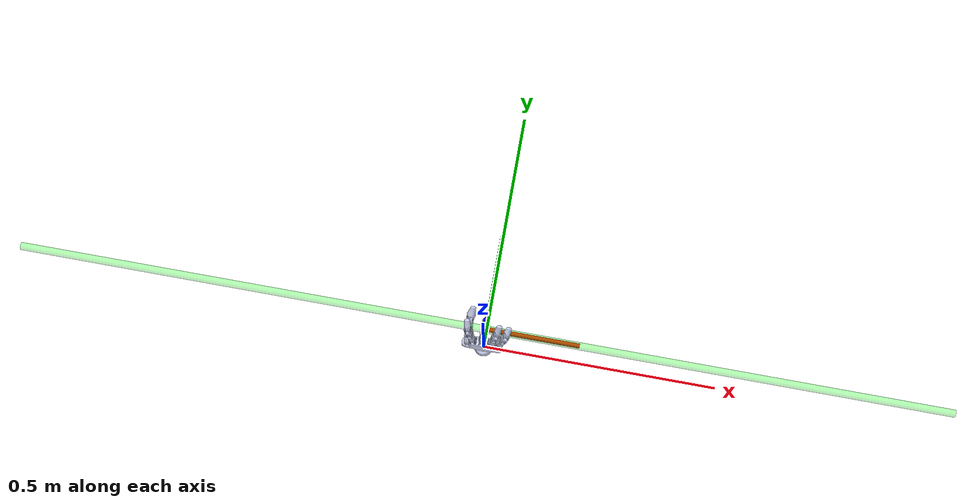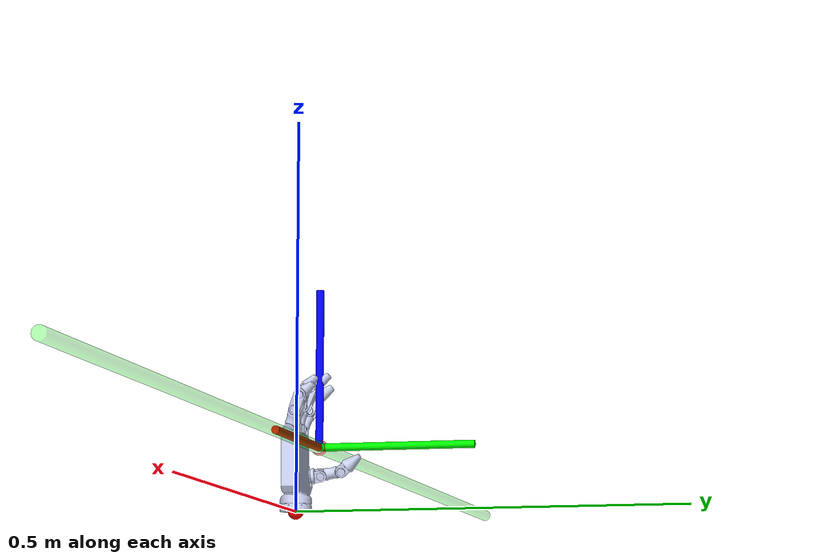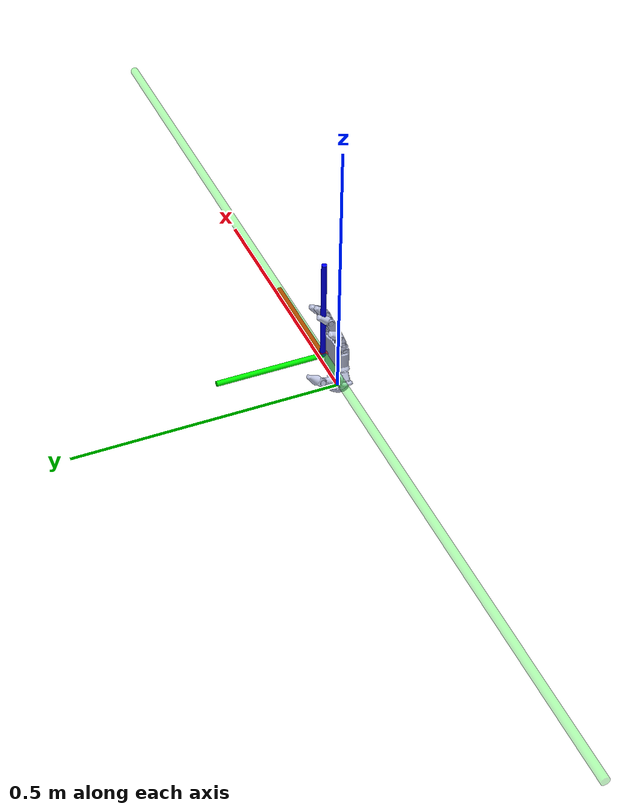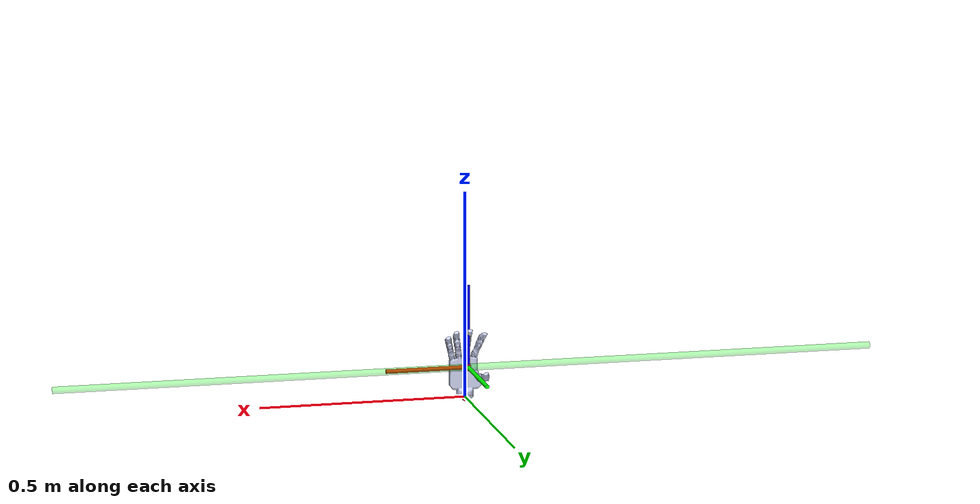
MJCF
<mujoco model="hand_right_sim">
    <compiler angle="radian" meshdir="/home/kavin/Documents/RosProjects/robot_ws/src/hand_right_sim/meshes/"/>

    <default>
        <geom density="5.0"/>
        <default class="joint">
            <joint axis="1 0 0" range="-3.14 3.14" limited="true" damping="0.8" armature="0.0002" frictionloss="0.01"/>
            <position kp="8" forcerange="-2 2" forcelimited="true"/>
        </default>
    </default>
    <size njmax="500" nconmax="100"/>
    <asset>
        <mesh name="palm_right" file="palm_right.STL"/>
        <mesh name="finger_11_right" file="finger_11_right.STL"/>
        <mesh name="finger_12_right" file="finger_12_right.STL"/>
        <mesh name="finger_13_right" file="finger_13_right.STL"/>
        <mesh name="finger_14_right" file="finger_14_right.STL"/>
        <mesh name="finger_21_right" file="finger_21_right.STL"/>
        <mesh name="finger_22_right" file="finger_22_right.STL"/>
        <mesh name="finger_23_right" file="finger_23_right.STL"/>
        <mesh name="finger_31_right" file="finger_31_right.STL"/>
        <mesh name="finger_32_right" file="finger_32_right.STL"/>
        <mesh name="finger_33_right" file="finger_33_right.STL"/>
        <mesh name="finger_41_right" file="finger_41_right.STL"/>
        <mesh name="finger_42_right" file="finger_42_right.STL"/>
        <mesh name="finger_43_right" file="finger_43_right.STL"/>
        <mesh name="finger_51_right" file="finger_51_right.STL"/>
        <mesh name="finger_52_right" file="finger_52_right.STL"/>
        <mesh name="finger_53_right" file="finger_53_right.STL"/>
    </asset>
    <worldbody>
        <body name="palm_right">
            <site name="ft_frame" pos="0 0 0" size="0.01 0.01 0.01" rgba="1 0 0 1" type="sphere" group="1"/>
            <body name="eef" pos="0 0.03 0.08">
                <site name="grip_site" pos="0 0 0" size="0.01 0.01 0.01" rgba="1 0 0 0.5" type="sphere" group="1"/>
                <site name="ee_x" pos="0.1 0 0" size="0.005 .1" quat="0.707105  0 0.707108 0 " rgba="1 0 0 1" type="cylinder" group="1"/>
                <site name="ee_y" pos="0 0.1 0" size="0.005 .1" quat="0.707105 0.707108 0 0" rgba="0 1 0 1" type="cylinder" group="1"/>
                <site name="ee_z" pos="0 0 0.1" size="0.005 .1" quat="1 0 0 0" rgba="0 0 1 1" type="cylinder" group="1"/>
                <site name="grip_site_cylinder" pos="0 0 0" size="0.008 1" quat="0.707105  0 0.707108 0 " rgba="0 1 0 0.3" type="cylinder" group="1"/>
            </body>

            <geom type="mesh" contype="0" conaffinity="0" group="1" rgba="0.792157 0.819608 0.933333 1" mesh="palm_right"/>
            <geom type="mesh" rgba="0.792157 0.819608 0.933333 1" mesh="palm_right"/>
            <body name="finger_11_right">
                <geom pos="-0.033156 0 0.046854" quat="-0.311001 0.357966 -0.577419 -0.664625" type="mesh" contype="0" conaffinity="0" group="1" rgba="0.792157 0.819608 0.933333 1"
                      mesh="finger_11_right"/>
                <geom pos="-0.033156 0 0.046854" quat="-0.311001 0.357966 -0.577419 -0.664625" type="mesh" rgba="0.792157 0.819608 0.933333 1" mesh="finger_11_right"/>
                <body name="finger_12_right">
                    <geom pos="-0.0337394 0.00495095 0.0472385" quat="0.164559 -0.0738354 -0.675353 -0.7151" type="mesh" contype="0" conaffinity="0" group="1" rgba="0.792157 0.819608 0.933333 1"
                          mesh="finger_12_right"/>
                    <geom pos="-0.0337394 0.00495095 0.0472385" quat="0.164559 -0.0738354 -0.675353 -0.7151" type="mesh" rgba="0.792157 0.819608 0.933333 1" mesh="finger_12_right"/>
                    <body name="finger_13_right" pos="-0.0357811 0.0222793 0.0485841" quat="0.160144 -0.0829774 -0.634047 -0.751966">
                        <inertial pos="2.80595e-08 -2.39117e-07 0.0134786" quat="0.70735 -4.57058e-06 4.56743e-06 0.706863" mass="0.00477507" diaginertia="5.13036e-07 5.06539e-07 1.11818e-07"/>
                        <joint class="joint" name="j_13_right" axis="-1 0 0"/>
                        <geom type="mesh" contype="0" conaffinity="0" group="1" rgba="0.792157 0.819608 0.933333 1" mesh="finger_13_right"/>
                        <geom type="mesh" rgba="0.792157 0.819608 0.933333 1" mesh="finger_13_right"/>
                        <body name="finger_14_right" pos="0 0 0.027" quat="0.967088 -0.254441 0 0">
                            <inertial pos="1.25791e-05 -0.000148504 0.0147394" quat="0.704713 0.00742825 -0.00610748 0.709427" mass="0.0045956" diaginertia="3.58607e-07 3.47268e-07 1.55217e-07"/>
                            <joint class="joint" name="j_14_right" axis="-1 0 0"/>
                            <geom type="mesh" contype="0" conaffinity="0" group="1" rgba="0.792157 0.819608 0.933333 1" mesh="finger_14_right"/>
                            <geom type="mesh" rgba="0.792157 0.819608 0.933333 1" mesh="finger_14_right"/>
                        </body>
                    </body>
                </body>
            </body>

            <body name="finger_21_right" pos="-0.023151 -0.00042188 0.10268" quat="0.0254432 -0.144315 0.171775 0.974176">
                <inertial pos="-3.24152e-08 -2.51581e-07 0.0147548" quat="0.706869 4.57535e-06 -4.57842e-06 0.707344" mass="0.00477507" diaginertia="5.13037e-07 5.06539e-07 1.11818e-07"/>
                <joint class="joint" name="j_21_right"/>
                <geom type="mesh" contype="0" conaffinity="0" group="1" rgba="0.792157 0.819608 0.933333 1" mesh="finger_21_right"/>
                <geom type="mesh" rgba="0.792157 0.819608 0.933333 1" mesh="finger_21_right"/>
                <body name="finger_22_right" pos="0 0 0.028233" quat="0.999917 0.0129201 0 0">
                    <inertial pos="1.0939e-05 -0.00275459 0.0214743" quat="0.989928 0.141348 -0.000490921 0.00794052" mass="0.00590807" diaginertia="9.20442e-07 9.07303e-07 1.87607e-07"/>
                    <joint class="joint" name="j_22_right"/>
                    <geom type="mesh" contype="0" conaffinity="0" group="1" rgba="0.792157 0.819608 0.933333 1" mesh="finger_22_right"/>
                    <geom type="mesh" rgba="0.792157 0.819608 0.933333 1" mesh="finger_22_right"/>
                    <body name="finger_23_right">
                        <geom pos="0 0 0.021" quat="0.965926 0.25882 0 0" type="mesh" contype="0" conaffinity="0" group="1" rgba="0.792157 0.819608 0.933333 1" mesh="finger_23_right"/>
                        <geom pos="0 0 0.021" quat="0.965926 0.25882 0 0" type="mesh" rgba="0.792157 0.819608 0.933333 1" mesh="finger_23_right"/>
                    </body>
                </body>
            </body>
            <body name="finger_31_right" pos="-0.003285 -0.00042188 0.10558" quat="-3.6174e-06 -6.37853e-07 -0.17365 -0.984807">
                <inertial pos="-3.25832e-08 -2.51593e-07 0.0147548" quat="0.70687 4.57531e-06 -4.57838e-06 0.707344" mass="0.00477507" diaginertia="5.13037e-07 5.06539e-07 1.11818e-07"/>
                <joint class="joint" name="j_31_right"/>
                <geom type="mesh" contype="0" conaffinity="0" group="1" rgba="0.792157 0.819608 0.933333 1" mesh="finger_31_right"/>
                <geom type="mesh" rgba="0.792157 0.819608 0.933333 1" mesh="finger_31_right"/>
                <body name="finger_32_right" pos="0 0 0.028233" quat="0.999592 0.0285586 0 0">
                    <inertial pos="1.10424e-05 -0.00310821 0.0248837" quat="0.99031 0.138776 -0.000191063 0.00526613" mass="0.00724892" diaginertia="1.49898e-06 1.47412e-06 2.35806e-07"/>
                    <joint class="joint" name="j_32_right"/>
                    <geom type="mesh" contype="0" conaffinity="0" group="1" rgba="0.792157 0.819608 0.933333 1" mesh="finger_32_right"/>
                    <geom type="mesh" rgba="0.792157 0.819608 0.933333 1" mesh="finger_32_right"/>
                    <body name="finger_33_right">
                        <geom pos="0 0 0.025" quat="0.965926 0.25882 0 0" type="mesh" contype="0" conaffinity="0" group="1" rgba="0.792157 0.819608 0.933333 1" mesh="finger_33_right"/>
                        <geom pos="0 0 0.025" quat="0.965926 0.25882 0 0" type="mesh" rgba="0.792157 0.819608 0.933333 1" mesh="finger_33_right"/>
                    </body>
                </body>
            </body>
            <body name="finger_41_right" pos="0.015852 -0.00042188 0.10376" quat="-0.0169777 0.096263 0.172819 0.980091">
                <inertial pos="-3.23309e-08 -2.51623e-07 0.0147548" quat="0.706869 4.57568e-06 -4.57875e-06 0.707344" mass="0.00477507" diaginertia="5.13037e-07 5.06539e-07 1.11818e-07"/>
                <joint class="joint" name="j_41_right"/>
                <geom type="mesh" contype="0" conaffinity="0" group="1" rgba="0.792157 0.819608 0.933333 1" mesh="finger_41_right"/>
                <geom type="mesh" rgba="0.792157 0.819608 0.933333 1" mesh="finger_41_right"/>
                <body name="finger_42_right" pos="0 0 0.028233" quat="0.99948 -0.0322514 0 0">
                    <inertial pos="1.05842e-05 -0.0026674 0.0219148" quat="0.990645 0.13628 -0.000364031 0.0071131" mass="0.00610116" diaginertia="9.88642e-07 9.73609e-07 1.94842e-07"/>
                    <joint class="joint" name="j_42_right"/>
                    <geom type="mesh" contype="0" conaffinity="0" group="1" rgba="0.792157 0.819608 0.933333 1" mesh="finger_42_right"/>
                    <geom type="mesh" rgba="0.792157 0.819608 0.933333 1" mesh="finger_42_right"/>
                    <body name="finger_43_right">
                        <geom pos="0 0 0.022" quat="0.965926 0.25882 0 0" type="mesh" contype="0" conaffinity="0" group="1" rgba="0.792157 0.819608 0.933333 1" mesh="finger_43_right"/>
                        <geom pos="0 0 0.022" quat="0.965926 0.25882 0 0" type="mesh" rgba="0.792157 0.819608 0.933333 1" mesh="finger_43_right"/>
                    </body>
                </body>
            </body>
            <body name="finger_51_right" pos="0.032224 -0.00042188 0.099812" quat="-0.0245697 0.139319 0.171904 0.974903">
                <inertial pos="-3.23106e-08 -2.51629e-07 0.0147548" quat="0.706869 4.57573e-06 -4.57881e-06 0.707344" mass="0.00477507" diaginertia="5.13037e-07 5.06539e-07 1.11818e-07"/>
                <joint class="joint" name="j_51_right"/>
                <geom type="mesh" contype="0" conaffinity="0" group="1" rgba="0.792157 0.819608 0.933333 1" mesh="finger_51_right"/>
                <geom type="mesh" rgba="0.792157 0.819608 0.933333 1" mesh="finger_51_right"/>
                <body name="finger_52_right" pos="0 0 0.028233" quat="0.999549 0.0300175 0 0">
                    <inertial pos="1.0365e-05 -0.00230626 0.0197904" quat="0.99123 0.131856 -0.000478174 0.00874174" mass="0.00528889" diaginertia="7.09884e-07 7.00419e-07 1.67443e-07"/>
                    <joint class="joint" name="j_52_right"/>
                    <geom type="mesh" contype="0" conaffinity="0" group="1" rgba="0.792157 0.819608 0.933333 1" mesh="finger_52_right"/>
                    <geom type="mesh" rgba="0.792157 0.819608 0.933333 1" mesh="finger_52_right"/>
                    <body name="finger_53_right">
                        <geom pos="0 0 0.02" quat="0.965926 0.25882 0 0" type="mesh" contype="0" conaffinity="0" group="1" rgba="0.792157 0.819608 0.933333 1" mesh="finger_53_right"/>
                        <geom pos="0 0 0.02" quat="0.965926 0.25882 0 0" type="mesh" rgba="0.792157 0.819608 0.933333 1" mesh="finger_53_right"/>
                    </body>
                </body>
            </body>
        </body>
    </worldbody>

    <contact>
        <exclude body1="palm_right" body2="finger_11_right"/>
        <exclude body1="palm_right" body2="finger_12_right"/>
        <exclude body1="palm_right" body2="finger_21_right"/>
        <exclude body1="palm_right" body2="finger_31_right"/>
        <exclude body1="palm_right" body2="finger_41_right"/>
        <exclude body1="palm_right" body2="finger_51_right"/>
    </contact>

    <tendon>
        <fixed name="j_20_right">
            <joint joint="j_21_right" coef="1"/>
            <joint joint="j_22_right" coef="1"/>
        </fixed>
        <fixed name="j_30_right">
            <joint joint="j_31_right" coef="1"/>
            <joint joint="j_32_right" coef="1"/>
        </fixed>
        <fixed name="j_40_right">
            <joint joint="j_41_right" coef="1"/>
            <joint joint="j_42_right" coef="1"/>
        </fixed>
        <fixed name="j_50_right">
            <joint joint="j_51_right" coef="1"/>
            <joint joint="j_52_right" coef="1"/>
        </fixed>
    </tendon>

    <actuator>
        <position class="joint" name="j13_right_T" joint="j_13_right" ctrllimited="true" ctrlrange="0 2.14"/>
        <position class="joint" name="j14_right_T" joint="j_14_right" ctrllimited="true" ctrlrange="0 2.14"/>
        <position class="joint" name="j20_right_T" tendon="j_20_right" ctrllimited="true" ctrlrange="0 2.14"/>
        <position class="joint" name="j30_right_T" tendon="j_30_right" ctrllimited="true" ctrlrange="0 2.14"/>
        <position class="joint" name="j40_right_T" tendon="j_40_right" ctrllimited="true" ctrlrange="0 2.14"/>
        <position class="joint" name="j50_right_T" tendon="j_50_right" ctrllimited="true" ctrlrange="0 2.14"/>
    </actuator>
    <sensor>
        <force name="force_ee" site="ft_frame"/>
        <torque name="torque_ee" site="ft_frame"/>
    </sensor>
</mujoco>
